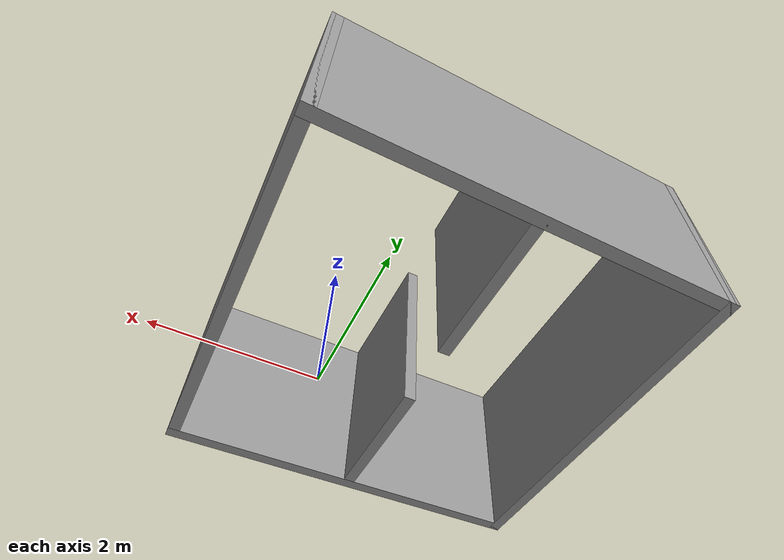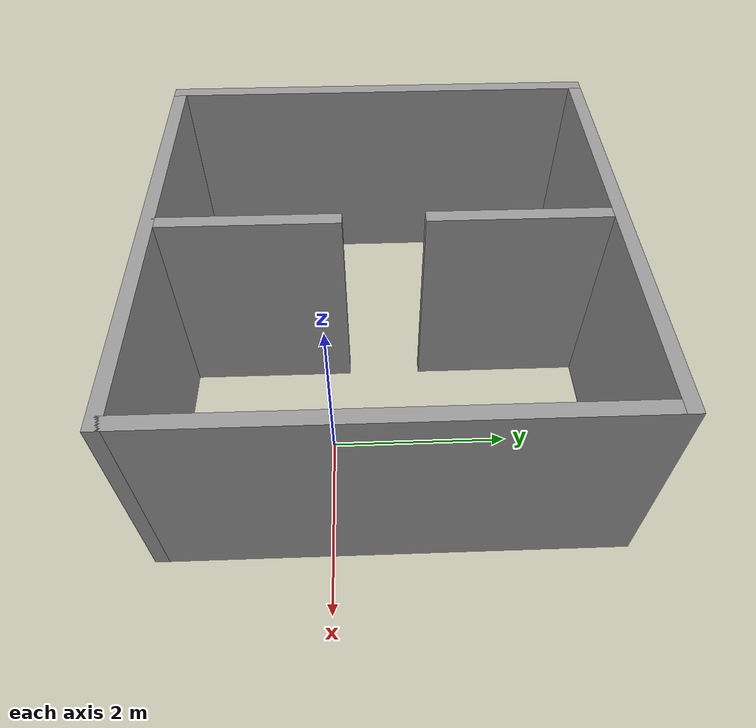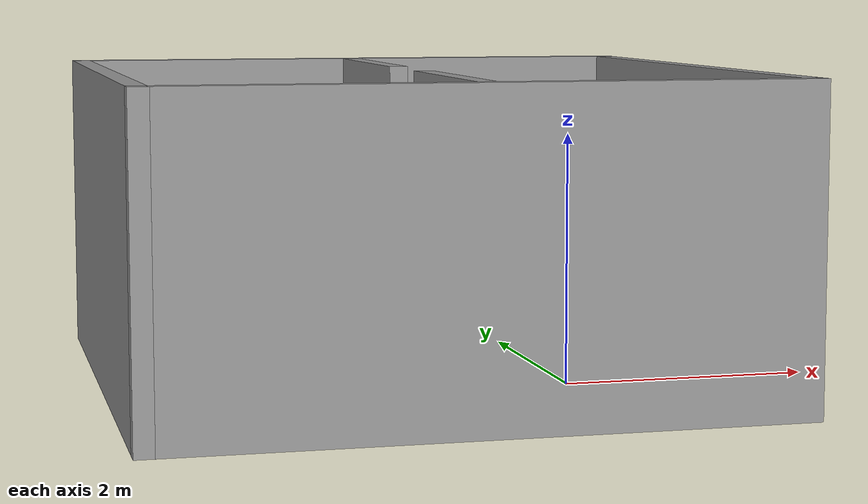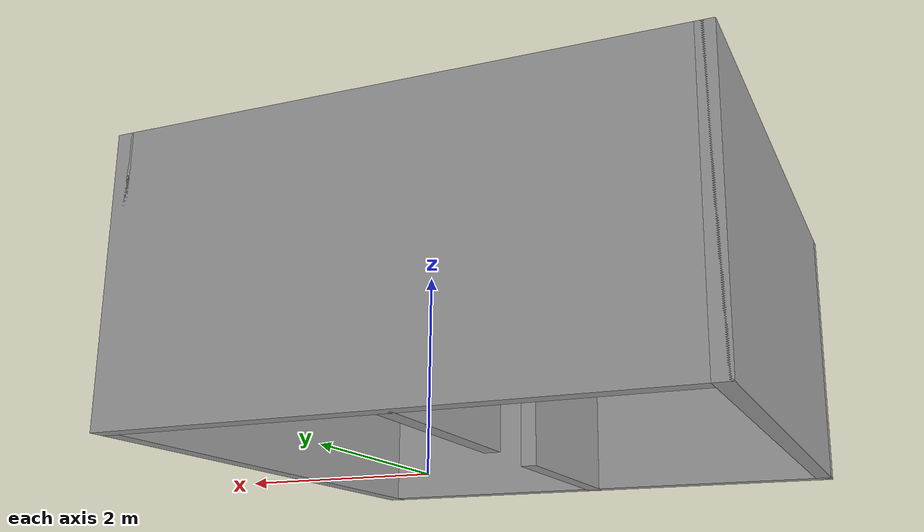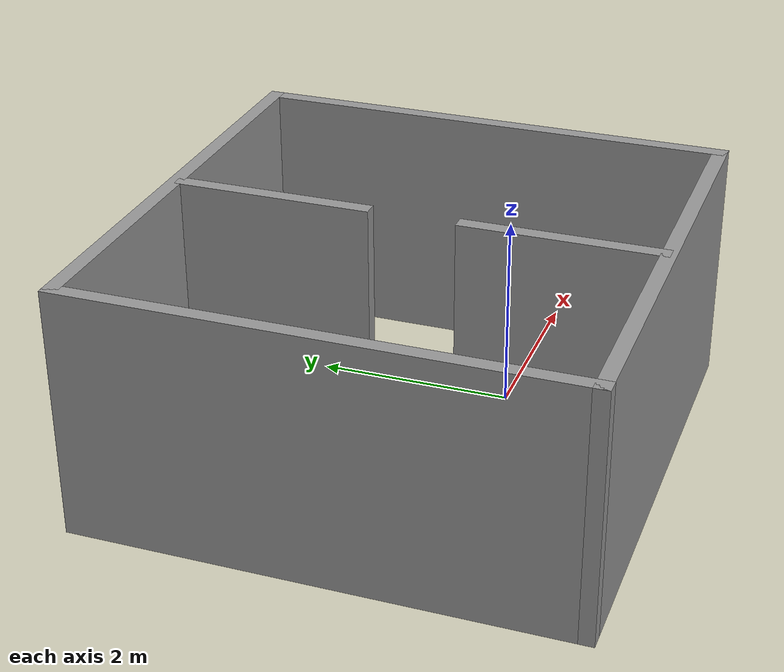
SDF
<?xml version='1.0'?>
<sdf version='1.7'>
  <model name='labyrinth'>
    <pose>-1.125 0.635 0 0 -0 0</pose>
    <link name='Wall_2'>
      <collision name='Wall_2_Collision'>
        <geometry>
          <box>
            <size>5 0.15 2.5</size>
          </box>
        </geometry>
        <pose>0 0 1.25 0 -0 0</pose>
      </collision>
      <visual name='Wall_2_Visual'>
        <pose>0 0 1.25 0 -0 0</pose>
        <geometry>
          <box>
            <size>5 0.15 2.5</size>
          </box>
        </geometry>
        <material>
          <script>
            <uri>file://media/materials/scripts/gazebo.material</uri>
            <name>Gazebo/Grey</name>
          </script>
          <ambient>1 1 1 1</ambient>
        </material>
        <meta>
          <layer>0</layer>
        </meta>
      </visual>
      <pose>-2.425 0 0 0 -0 1.5708</pose>
    </link>
    <link name='Wall_3'>
      <collision name='Wall_3_Collision'>
        <geometry>
          <box>
            <size>5 0.15 2.5</size>
          </box>
        </geometry>
        <pose>0 0 1.25 0 -0 0</pose>
      </collision>
      <visual name='Wall_3_Visual'>
        <pose>0 0 1.25 0 -0 0</pose>
        <geometry>
          <box>
            <size>5 0.15 2.5</size>
          </box>
        </geometry>
        <material>
          <script>
            <uri>file://media/materials/scripts/gazebo.material</uri>
            <name>Gazebo/Grey</name>
          </script>
          <ambient>1 1 1 1</ambient>
        </material>
        <meta>
          <layer>0</layer>
        </meta>
      </visual>
      <pose>0 2.425 0 0 -0 0</pose>
    </link>
    <link name='Wall_30'>
      <collision name='Wall_30_Collision'>
        <geometry>
          <box>
            <size>2 0.15 2.5</size>
          </box>
        </geometry>
        <pose>0 0 1.25 0 -0 0</pose>
      </collision>
      <visual name='Wall_30_Visual'>
        <pose>0 0 1.25 0 -0 0</pose>
        <geometry>
          <box>
            <size>2 0.15 2.5</size>
          </box>
        </geometry>
        <material>
          <script>
            <uri>file://media/materials/scripts/gazebo.material</uri>
            <name>Gazebo/Grey</name>
          </script>
          <ambient>1 1 1 1</ambient>
        </material>
        <meta>
          <layer>0</layer>
        </meta>
      </visual>
      <pose>-0.000413 1.41505 0 0 -0 1.5708</pose>
    </link>
    <link name='Wall_4'>
      <collision name='Wall_4_Collision'>
        <geometry>
          <box>
            <size>5 0.15 2.5</size>
          </box>
        </geometry>
        <pose>0 0 1.25 0 -0 0</pose>
      </collision>
      <visual name='Wall_4_Visual'>
        <pose>0 0 1.25 0 -0 0</pose>
        <geometry>
          <box>
            <size>5 0.15 2.5</size>
          </box>
        </geometry>
        <material>
          <script>
            <uri>file://media/materials/scripts/gazebo.material</uri>
            <name>Gazebo/Grey</name>
          </script>
          <ambient>1 1 1 1</ambient>
        </material>
        <meta>
          <layer>0</layer>
        </meta>
      </visual>
      <pose>2.425 0 0 0 -0 -1.5708</pose>
    </link>
    <link name='Wall_5'>
      <collision name='Wall_5_Collision'>
        <geometry>
          <box>
            <size>5 0.15 2.5</size>
          </box>
        </geometry>
        <pose>0 0 1.25 0 -0 0</pose>
      </collision>
      <visual name='Wall_5_Visual'>
        <pose>0 0 1.25 0 -0 0</pose>
        <geometry>
          <box>
            <size>5 0.15 2.5</size>
          </box>
        </geometry>
        <material>
          <script>
            <uri>file://media/materials/scripts/gazebo.material</uri>
            <name>Gazebo/Grey</name>
          </script>
          <ambient>1 1 1 1</ambient>
        </material>
        <meta>
          <layer>0</layer>
        </meta>
      </visual>
      <pose>0 -2.425 0 0 -0 3.14159</pose>
    </link>
    <link name='Wall_7'>
      <collision name='Wall_7_Collision'>
        <geometry>
          <box>
            <size>2 0.15 2.5</size>
          </box>
        </geometry>
        <pose>0 0 1.25 0 -0 0</pose>
      </collision>
      <visual name='Wall_7_Visual'>
        <pose>0 0 1.25 0 -0 0</pose>
        <geometry>
          <box>
            <size>2 0.15 2.5</size>
          </box>
        </geometry>
        <material>
          <script>
            <uri>file://media/materials/scripts/gazebo.material</uri>
            <name>Gazebo/Grey</name>
          </script>
          <ambient>1 1 1 1</ambient>
        </material>
        <meta>
          <layer>0</layer>
        </meta>
      </visual>
      <pose>-0.000413 -1.4442 0 0 -0 1.5708</pose>
    </link>
    <static>1</static>
  </model>
</sdf>
